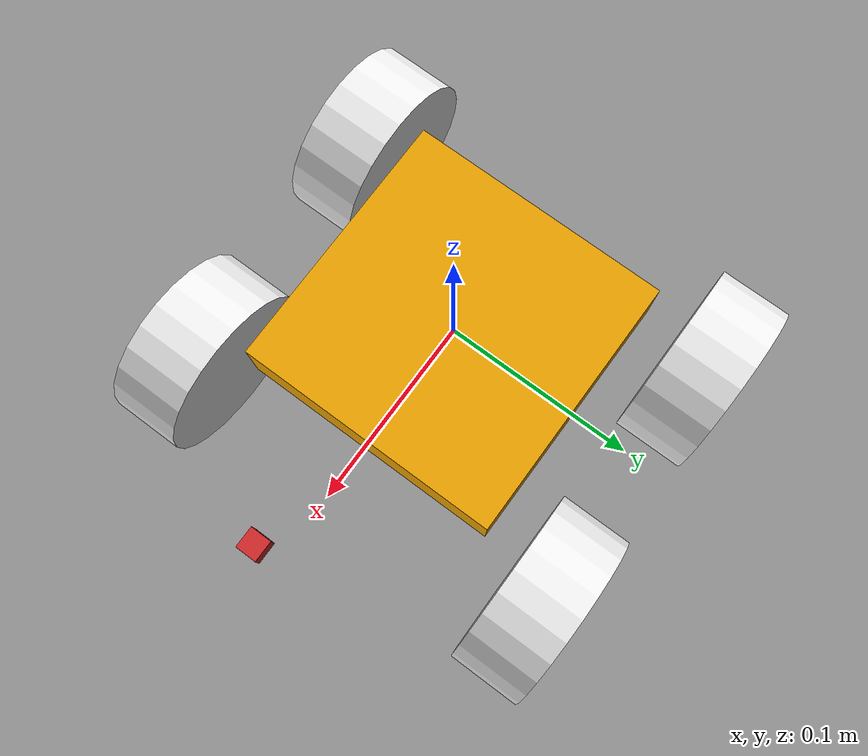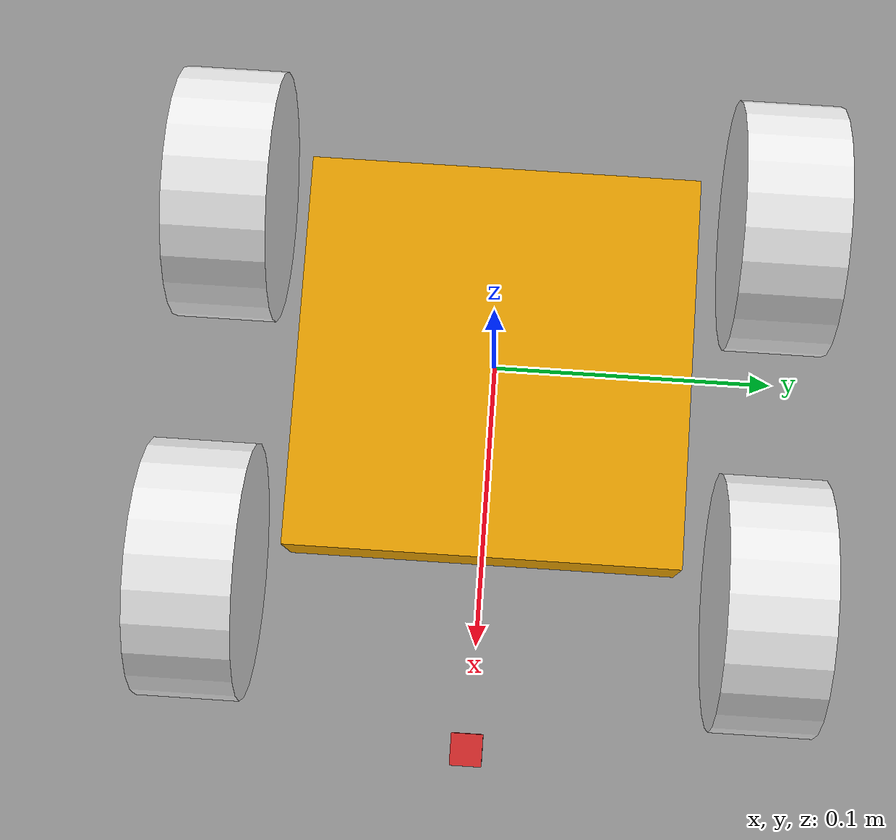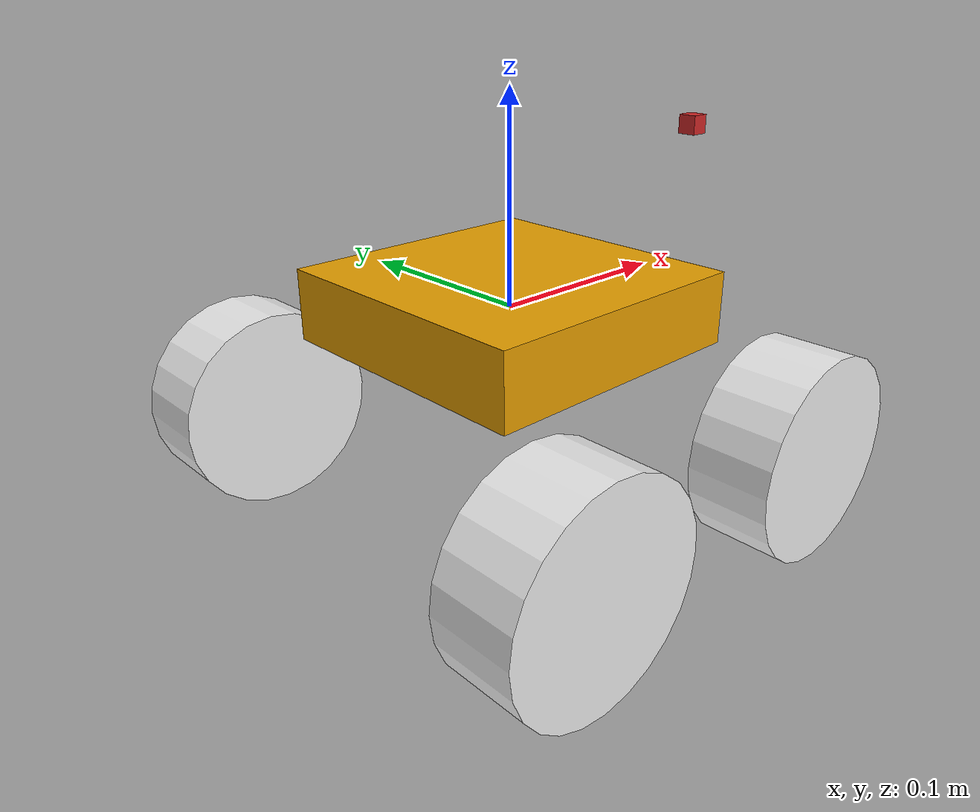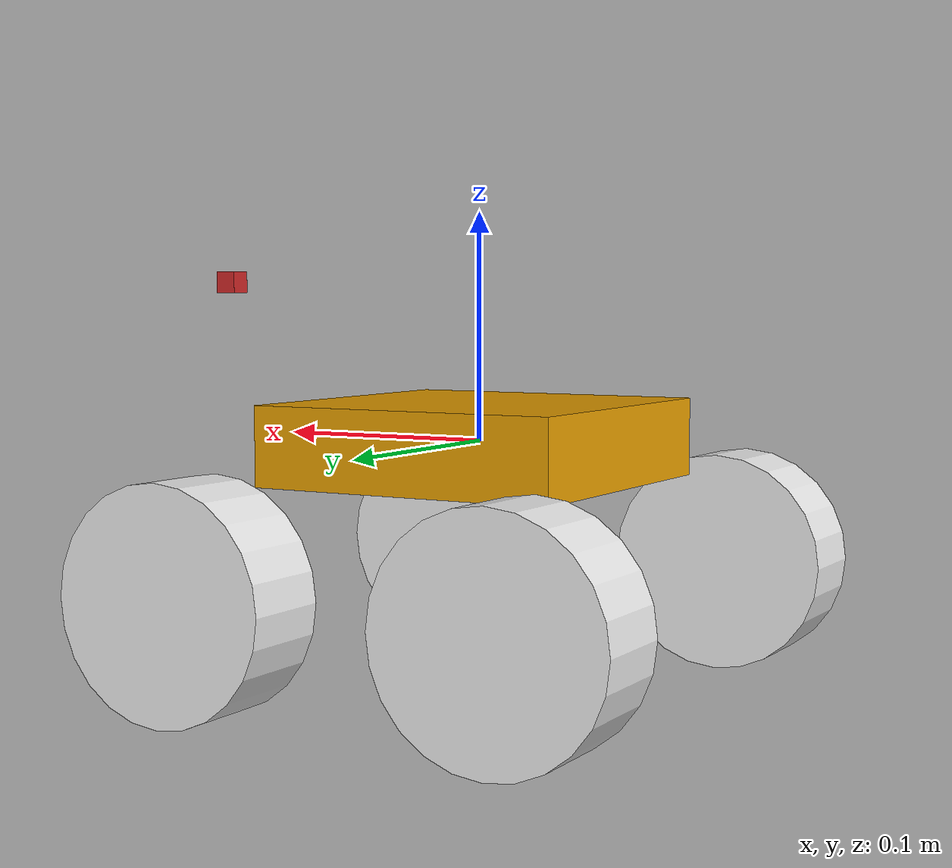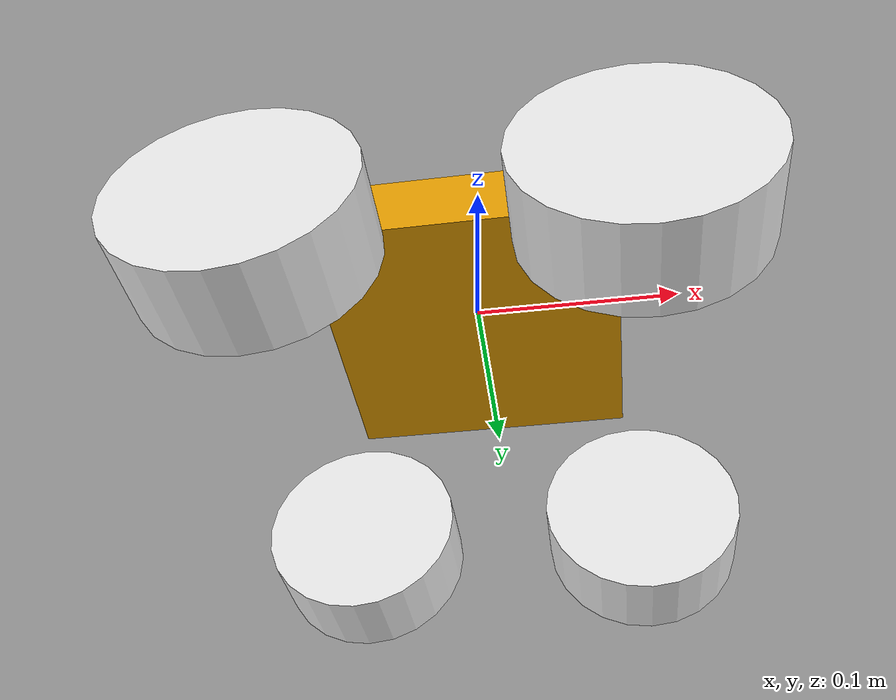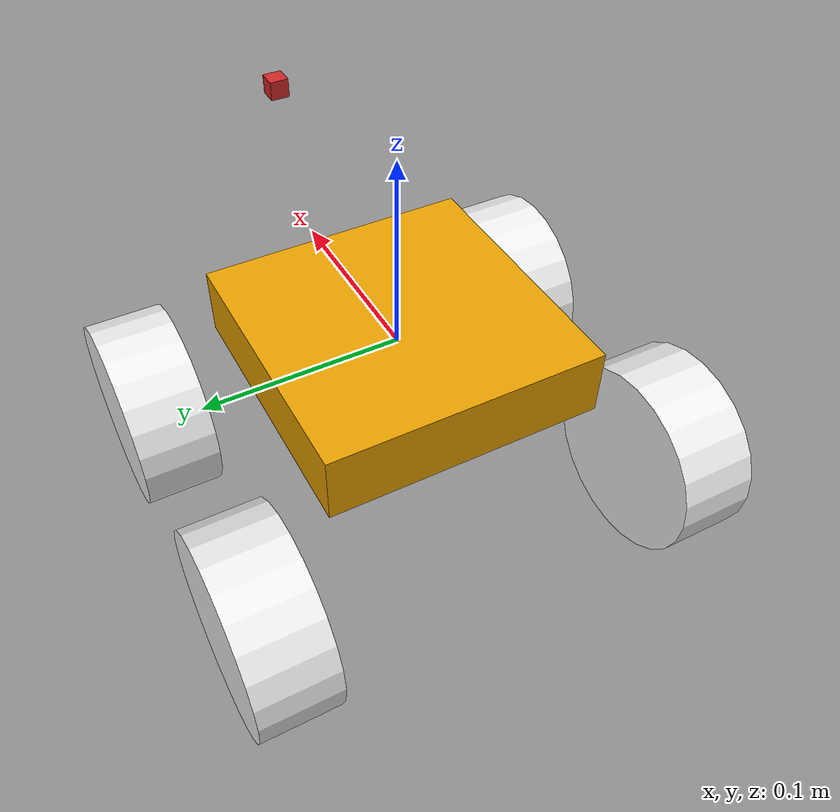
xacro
<?xml version="1.0"?>
<robot name="roscontrol" xmlns:xacro="http://ros.org/wiki/xacro">

  <xacro:property name="width" value="0.08" />
  <xacro:property name="dis" value="0.2" />
  <xacro:property name="leglen" value="0.6" />
  <xacro:property name="polelen" value="0.2" />
  <xacro:property name="bodylen" value="0.14" />
  <xacro:property name="baselen" value="0.4" />
  <xacro:property name="wheeldiam" value="0.1" />
  <xacro:property name="pi" value="3.1415" />
  <xacro:property name="camera_link" value=".01" />

  <material name="blue">
    <color rgba="0 0 0.8 1"/>
  </material>

  <material name="black">
    <color rgba="0 0 0 1"/>
  </material>

  <material name="white">
    <color rgba="1 1 1 1"/>
  </material>

  <xacro:macro name="default_inertial" params="mass">
    <inertial>
      <mass value="${mass}" />
      <inertia ixx="1.0" ixy="0.0" ixz="0.0" iyy="1.0" iyz="0.0" izz="1.0" />
    </inertial>
  </xacro:macro>

  <link name="base_link">
    <visual>
      <geometry>
        <box size="${bodylen} ${bodylen} ${bodylen/4}"/>
      </geometry>
    </visual>
    <collision>
      <geometry>
        <box size="${bodylen/2} ${bodylen/2} ${bodylen/4}"/>
      </geometry>
    </collision>
    <xacro:default_inertial mass="50"/>
  </link>

<gazebo reference="base_link">
    <material>marker2/diffuce</material>
</gazebo>

  <xacro:macro name="wheel" params="prefix suffix x y">

    <link name="${prefix}_${suffix}_wheel">
      <visual>
        <origin xyz="0 0 0" rpy="${pi/2} 0 0" />
        <geometry>
	  <cylinder radius="${wheeldiam/2}" length="0.04"/>
        </geometry>

      </visual>
      <collision>
        <origin xyz="0 0 0" rpy="${pi/2} 0 0" />
        <geometry>
          <cylinder radius="${wheeldiam/2}" length="0.04"/>
        </geometry>
      </collision>
      <xacro:default_inertial mass="50"/>
    </link>
    <joint name="${prefix}_${suffix}_wheel_joint" type="continuous">
      <axis xyz="0 1 0" rpy="0 0 0" />
      <parent link="base_link"/>
      <child link="${prefix}_${suffix}_wheel"/>
      <origin xyz="${x*0.075} ${y*0.11} -${0.06}" rpy="0 0 0"/>
    </joint>

    <!-- This block provides the simulator (Gazebo) with information on a few additional
    physical properties. See http://gazebosim.org/tutorials/?tut=ros_urdf for more-->
    <gazebo reference="${prefix}_${suffix}_wheel">
      <mu1 value="200.0"/>
      <mu2 value="100.0"/>
      <kp value="10000000.0" />
      <kd value="1.0" />
      <material>Gazebo/white</material>
    </gazebo>

    <!-- This block connects the wheel joint to an actuator (motor), which informs both
    simulation and visualization of the robot -->
    <transmission name="${prefix}_${suffix}_wheel_trans">
      <type>transmission_interface/SimpleTransmission</type>
      <actuator name="${prefix}_${suffix}_wheel_motor">
        <mechanicalReduction>1</mechanicalReduction>
      </actuator>
      <joint name="${prefix}_${suffix}_wheel_joint">
        <hardwareInterface>VelocityJointInterface</hardwareInterface>
      </joint>
    </transmission>

  </xacro:macro>

  <xacro:wheel prefix="left" suffix="front" x="1" y="1"/>
  <xacro:wheel prefix="left" suffix="back" x="-1" y="1"/>
  <xacro:wheel prefix="right" suffix="front" x="1" y="-1"/>
  <xacro:wheel prefix="right" suffix="back" x="-1" y="-1"/>

  <joint name="camera_joint" type="continuous">
    <axis xyz="0 1 0" />
    <origin xyz="${camera_link/2 + width+.05} 0 ${bodylen/2}" rpy="0 0 0"/>
    <parent link="base_link"/>
    <child link="camera_link"/>
  </joint>

  <!-- Camera -->
  <link name="camera_link">
    <collision>
      <origin xyz="0 0 0" rpy="0 0 0"/>
      <geometry>
    <box size="${camera_link} ${camera_link} ${camera_link}"/>
      </geometry>
    </collision>

    <visual>
      <origin xyz="0 0 0" rpy="0 0 0"/>
      <geometry>
    <box size="${camera_link} ${camera_link} ${camera_link}"/>
      </geometry>
      <material name="red"/>
    </visual>

    <inertial>
      <mass value="1e-5" />
      <origin xyz="0 0 0" rpy="0 0 0"/>
      <inertia ixx="1e-6" ixy="0" ixz="0" iyy="1e-6" iyz="0" izz="1e-6" />
    </inertial>
  </link>

   <transmission name="camera_trans">
    <type>transmission_interface/SimpleTransmission</type>
    <actuator name="camera_motor">
      <mechanicalReduction>1</mechanicalReduction>
    </actuator>
    <joint name="camera_joint">
      <hardwareInterface>PositionJointInterface</hardwareInterface>
    </joint>
  </transmission>

  <!-- Gazebo plugin for ROS Control -->
  <gazebo>
    <plugin name="gazebo_ros_control" filename="libgazebo_ros_control.so">

    </plugin>
  </gazebo>

  <!-- camera -->
  <gazebo reference="camera_link">
    <sensor type="camera" name="camera1">
      <update_rate>30.0</update_rate>
      <camera name="head">
        <horizontal_fov>1.3962634</horizontal_fov>
        <image>
          <width>${1920/2}</width>
          <height>${1080/2}</height>
          <format>R8G8B8</format>
        </image>
        <clip>
          <near>0.02</near>
          <far>300</far>
        </clip>
        <noise>
          <type>gaussian</type>
          <!-- Noise is sampled independently per pixel on each frame.
               That pixel's noise value is added to each of its color
               channels, which at that point lie in the range [0,1]. -->
          <mean>0.0</mean>
          <stddev>0.007</stddev>
        </noise>
      </camera>
      <plugin name="camera_controller" filename="libgazebo_ros_camera.so">
        <alwaysOn>true</alwaysOn>
        <updateRate>0.0</updateRate>
        <cameraName>rrbot/camera1</cameraName>
        <imageTopicName>image_raw</imageTopicName>
        <cameraInfoTopicName>camera_info</cameraInfoTopicName>
        <frameName>camera_link</frameName>
        <hackBaseline>0.07</hackBaseline>
        <distortionK1>0.0</distortionK1>
        <distortionK2>0.0</distortionK2>
        <distortionK3>0.0</distortionK3>
        <distortionT1>0.0</distortionT1>
        <distortionT2>0.0</distortionT2>
      </plugin>
    </sensor>
  </gazebo>
</robot>
